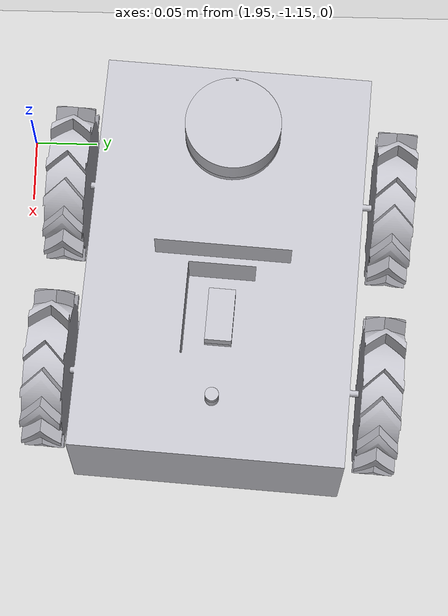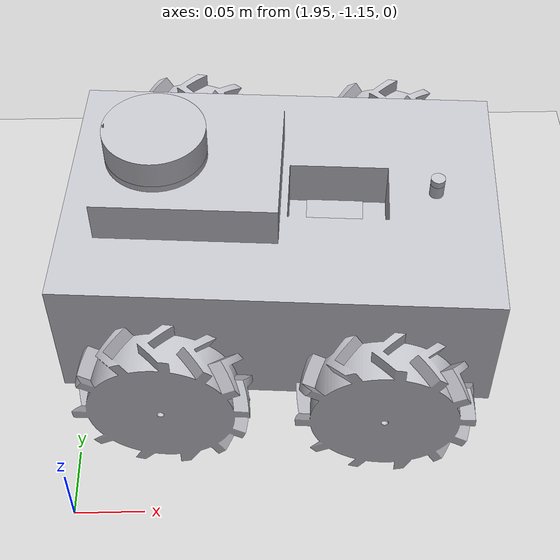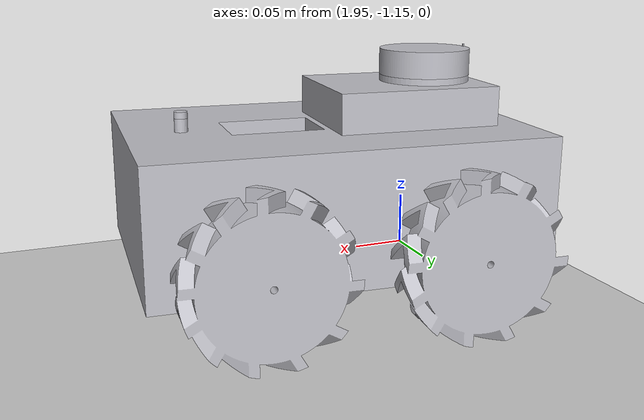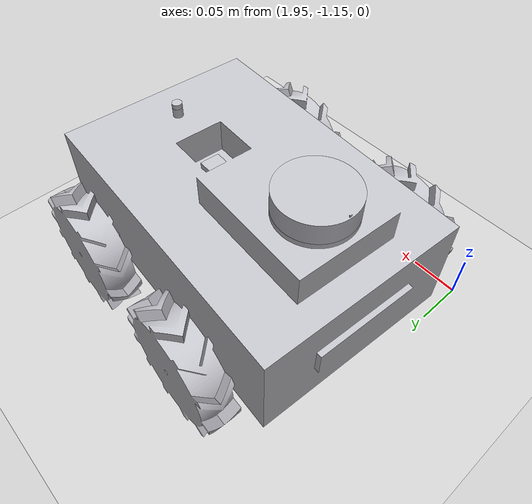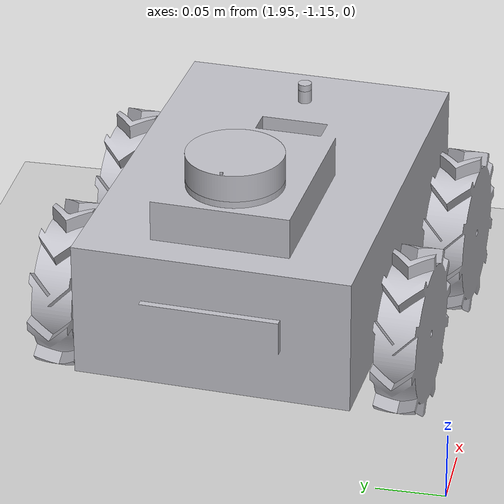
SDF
<sdf version="1.7">
 <world name="default">
  <light name="sun" type="directional">
   <pose>0 0 10 0 -0 0</pose>
   <diffuse>0.8 0.8 0.8 1</diffuse>
   <specular>0.2 0.2 0.2 1</specular>
   <attenuation>
    <range>1000</range>
    <constant>0.9</constant>
    <linear>0.01</linear>
    <quadratic>0.001</quadratic>
   </attenuation>
   <direction>-0.5 0.1 -0.9</direction>
   <spot><inner_angle>0</inner_angle><outer_angle>0</outer_angle><falloff>0</falloff></spot>
  </light>
  <model name="ground_plane">
   <static>1</static>
   <link name="link">
    <collision name="collision">
     <geometry><plane><normal>0 0 1</normal><size>100 100</size></plane></geometry>
     <surface><friction><ode><mu>100</mu><mu2>50</mu2></ode></friction></surface>
    </collision>
    <visual name="visual">
     <cast_shadows>0</cast_shadows>
     <geometry><plane><normal>0 0 1</normal><size>100 100</size></plane></geometry>
     <material>
      <script><uri>file://media/materials/scripts/gazebo.material</uri><name>Gazebo/Grey</name></script>
     </material>
    </visual>
   </link>
  </model>
  <gravity>0 0 -9.8</gravity>
  <magnetic_field>6e-06 2.3e-05 -4.2e-05</magnetic_field>
  <atmosphere type="adiabatic"/>
  <physics type="ode">
   <max_step_size>0.001</max_step_size>
   <real_time_factor>1</real_time_factor>
   <real_time_update_rate>1000</real_time_update_rate>
  </physics>
  <scene><ambient>0.4 0.4 0.4 1</ambient><background>0.7 0.7 0.7 1</background><shadows>1</shadows></scene>
  <audio><device>default</device></audio>
  <spherical_coordinates>
   <surface_model>EARTH_WGS84</surface_model>
   <latitude_deg>0</latitude_deg>
   <longitude_deg>0</longitude_deg>
   <elevation>0</elevation>
   <heading_deg>0</heading_deg>
  </spherical_coordinates>
  <model name="bal_robot_urdf">
   <link name="base_link">
    <inertial>
     <pose>0.045593 0.001215 0.090924 0 -0 0</pose>
     <mass>7.41975</mass>
     <inertia>
      <ixx>0.0333575</ixx>
      <ixy>-4.40071e-06</ixy>
      <ixz>-0.00569166</ixz>
      <iyy>0.0671669</iyy>
      <iyz>1.21234e-06</iyz>
      <izz>0.0773116</izz>
     </inertia>
    </inertial>
    <collision name="base_link_collision">
     <geometry>
      <mesh>
       <scale>0.001 0.001 0.001</scale>
       <uri>file:///home/abcom/Documents/GitHub/assignment_ws/install/bal_robot_urdf_description/share/bal_robot_urdf_description/meshes/base_link.stl</uri>
      </mesh>
     </geometry>
     <surface><friction><ode><mu>0.2</mu><mu2>0.2</mu2></ode></friction></surface>
    </collision>
    <collision name="base_link_fixed_joint_lump__gps_1_collision_1">
     <geometry>
      <mesh>
       <scale>0.001 0.001 0.001</scale>
       <uri>file:///home/abcom/Documents/GitHub/assignment_ws/install/bal_robot_urdf_description/share/bal_robot_urdf_description/meshes/gps_1.stl</uri>
      </mesh>
     </geometry>
     <surface><friction><ode><mu>0.2</mu><mu2>0.2</mu2></ode></friction></surface>
    </collision>
    <collision name="base_link_fixed_joint_lump__lidar_1_collision_2">
     <geometry>
      <mesh>
       <scale>0.001 0.001 0.001</scale>
       <uri>file:///home/abcom/Documents/GitHub/assignment_ws/install/bal_robot_urdf_description/share/bal_robot_urdf_description/meshes/lidar_1.stl</uri>
      </mesh>
     </geometry>
     <surface><friction><ode><mu>0.2</mu><mu2>0.2</mu2></ode></friction></surface>
    </collision>
    <collision name="base_link_fixed_joint_lump__realsence_1_collision_3">
     <pose>-0.2 0 0 0 -0 0</pose>
     <geometry>
      <mesh>
       <scale>0.001 0.001 0.001</scale>
       <uri>file:///home/abcom/Documents/GitHub/assignment_ws/install/bal_robot_urdf_description/share/bal_robot_urdf_description/meshes/realsence_1.stl</uri>
      </mesh>
     </geometry>
     <surface><friction><ode><mu>0.2</mu><mu2>0.2</mu2></ode></friction></surface>
    </collision>
    <collision name="base_link_fixed_joint_lump__imu_1_collision_4">
     <geometry>
      <mesh>
       <scale>0.001 0.001 0.001</scale>
       <uri>file:///home/abcom/Documents/GitHub/assignment_ws/install/bal_robot_urdf_description/share/bal_robot_urdf_description/meshes/imu_1.stl</uri>
      </mesh>
     </geometry>
     <surface><friction><ode><mu>0.2</mu><mu2>0.2</mu2></ode></friction></surface>
    </collision>
    <visual name="base_link_visual">
     <geometry>
      <mesh>
       <scale>0.001 0.001 0.001</scale>
       <uri>file:///home/abcom/Documents/GitHub/assignment_ws/install/bal_robot_urdf_description/share/bal_robot_urdf_description/meshes/base_link.stl</uri>
      </mesh>
     </geometry>
     <material>
      <script><name>Gazebo/Silver</name><uri>file://media/materials/scripts/gazebo.material</uri></script>
     </material>
    </visual>
    <visual name="base_link_fixed_joint_lump__gps_1_visual_1">
     <geometry>
      <mesh>
       <scale>0.001 0.001 0.001</scale>
       <uri>file:///home/abcom/Documents/GitHub/assignment_ws/install/bal_robot_urdf_description/share/bal_robot_urdf_description/meshes/gps_1.stl</uri>
      </mesh>
     </geometry>
     <material>
      <script><name>Gazebo/Silver</name><uri>file://media/materials/scripts/gazebo.material</uri></script>
     </material>
    </visual>
    <visual name="base_link_fixed_joint_lump__lidar_1_visual_2">
     <geometry>
      <mesh>
       <scale>0.001 0.001 0.001</scale>
       <uri>file:///home/abcom/Documents/GitHub/assignment_ws/install/bal_robot_urdf_description/share/bal_robot_urdf_description/meshes/lidar_1.stl</uri>
      </mesh>
     </geometry>
     <material>
      <script><name>Gazebo/Silver</name><uri>file://media/materials/scripts/gazebo.material</uri></script>
     </material>
    </visual>
    <visual name="base_link_fixed_joint_lump__realsence_1_visual_3">
     <pose>-0.2 0 0 0 -0 0</pose>
     <geometry>
      <mesh>
       <scale>0.001 0.001 0.001</scale>
       <uri>file:///home/abcom/Documents/GitHub/assignment_ws/install/bal_robot_urdf_description/share/bal_robot_urdf_description/meshes/realsence_1.stl</uri>
      </mesh>
     </geometry>
     <material>
      <script><name>Gazebo/Silver</name><uri>file://media/materials/scripts/gazebo.material</uri></script>
     </material>
    </visual>
    <visual name="base_link_fixed_joint_lump__imu_1_visual_4">
     <geometry>
      <mesh>
       <scale>0.001 0.001 0.001</scale>
       <uri>file:///home/abcom/Documents/GitHub/assignment_ws/install/bal_robot_urdf_description/share/bal_robot_urdf_description/meshes/imu_1.stl</uri>
      </mesh>
     </geometry>
     <material>
      <script><name>Gazebo/Silver</name><uri>file://media/materials/scripts/gazebo.material</uri></script>
     </material>
    </visual>
    <self_collide>1</self_collide>
    <self_collide>1</self_collide>
    <self_collide>1</self_collide>
    <sensor name="lidar_sensor" type="ray">
     <visualize>1</visualize>
     <update_rate>10</update_rate>
     <ray>
      <scan>
       <horizontal>
        <samples>360</samples>
        <resolution>1</resolution>
        <min_angle>-3.14</min_angle>
        <max_angle>3.14</max_angle>
       </horizontal>
       <vertical><samples>1</samples><min_angle>0</min_angle><max_angle>0</max_angle></vertical>
      </scan>
      <range><min>0.3</min><max>10</max><resolution>0.01</resolution></range>
      <noise><type>gaussian</type><mean>0</mean><stddev>0.01</stddev></noise>
     </ray>
     <plugin name="laser_controller" filename="libgazebo_ros_ray_sensor.so">
      <ros><argument>~/out:=scan</argument></ros>
      <output_type>sensor_msgs/LaserScan</output_type>
      <frame_name>lidar_1</frame_name>
     </plugin>
     <pose>0.117737 0.001226 0.164764 0 -0 0</pose>
    </sensor>
    <self_collide>1</self_collide>
    <sensor name="camera" type="camera">
     <visualize>1</visualize>
     <update_rate>10</update_rate>
     <camera>
      <horizontal_fov>1.089</horizontal_fov>
      <image><format>R8G8B8</format><width>640</width><height>480</height></image>
      <clip><near>0.05</near><far>12</far></clip>
     </camera>
     <plugin name="camera_controller" filename="libgazebo_ros_camera.so">
      <frame_name>realsence_1_optical</frame_name>
     </plugin>
     <pose>0.187737 0.001226 0.082264 0 -0 0</pose>
    </sensor>
    <self_collide>1</self_collide>
    <sensor name="imu_sensor" type="imu">
     <always_on>1</always_on>
     <update_rate>100</update_rate>
     <visualize>1</visualize>
     <topic>__default_topic__</topic>
     <plugin name="imu_data" filename="libgazebo_ros_imu_sensor.so">
      <topicName>imu</topicName>
      <bodyName>imu_1</bodyName>
      <updateRateHZ>10.0</updateRateHZ>
      <gaussianNoise>0.0</gaussianNoise>
      <xyzOffset>0 0 0</xyzOffset>
      <rpyOffset>0 0 0</rpyOffset>
      <frameName>imu_1</frameName>
      <initialOrientationAsReference>0</initialOrientationAsReference>
     </plugin>
     <pose>-0.005 0 0.099764 0 -0 0</pose>
    </sensor>
   </link>
   <joint name="Revolute 4" type="revolute">
    <pose relative_to="base_link">0.107737 -0.108774 0.054764 0 -0 0</pose>
    <parent>base_link</parent>
    <child>rfwheel_1</child>
    <axis>
     <xyz>0 1 0</xyz>
     <limit><lower>-1e+16</lower><upper>1e+16</upper></limit>
     <dynamics><spring_reference>0</spring_reference><spring_stiffness>0</spring_stiffness></dynamics>
    </axis>
   </joint>
   <link name="rfwheel_1">
    <pose relative_to="Revolute 4">0 0 0 0 -0 0</pose>
    <inertial>
     <pose>-0.000489 -0.015 0.000114 0 -0 0</pose>
     <mass>2.04482</mass>
     <inertia>
      <ixx>0.001605</ixx>
      <ixy>0</ixy>
      <ixz>2e-06</ixz>
      <iyy>0.002914</iyy>
      <iyz>0</iyz>
      <izz>0.001615</izz>
     </inertia>
    </inertial>
    <collision name="rfwheel_1_collision">
     <pose>-0.107737 0.108774 -0.054764 0 -0 0</pose>
     <geometry>
      <mesh>
       <scale>0.001 0.001 0.001</scale>
       <uri>file:///home/abcom/Documents/GitHub/assignment_ws/install/bal_robot_urdf_description/share/bal_robot_urdf_description/meshes/rfwheel_1.stl</uri>
      </mesh>
     </geometry>
     <surface><friction><ode><mu>0.2</mu><mu2>0.2</mu2></ode></friction></surface>
    </collision>
    <visual name="rfwheel_1_visual">
     <pose>-0.107737 0.108774 -0.054764 0 -0 0</pose>
     <geometry>
      <mesh>
       <scale>0.001 0.001 0.001</scale>
       <uri>file:///home/abcom/Documents/GitHub/assignment_ws/install/bal_robot_urdf_description/share/bal_robot_urdf_description/meshes/rfwheel_1.stl</uri>
      </mesh>
     </geometry>
     <material>
      <script><name>Gazebo/Silver</name><uri>file://media/materials/scripts/gazebo.material</uri></script>
     </material>
    </visual>
    <self_collide>1</self_collide>
   </link>
   <joint name="Revolute 5" type="revolute">
    <pose relative_to="base_link">-0.042263 -0.108774 0.054764 0 -0 0</pose>
    <parent>base_link</parent>
    <child>rbwheel_1</child>
    <axis>
     <xyz>0 1 0</xyz>
     <limit><lower>-1e+16</lower><upper>1e+16</upper></limit>
     <dynamics><spring_reference>0</spring_reference><spring_stiffness>0</spring_stiffness></dynamics>
    </axis>
   </joint>
   <link name="rbwheel_1">
    <pose relative_to="Revolute 5">0 0 0 0 -0 0</pose>
    <inertial>
     <pose>-0.000489 -0.015 0.000114 0 -0 0</pose>
     <mass>2.04482</mass>
     <inertia>
      <ixx>0.001605</ixx>
      <ixy>0</ixy>
      <ixz>2e-06</ixz>
      <iyy>0.002914</iyy>
      <iyz>0</iyz>
      <izz>0.001615</izz>
     </inertia>
    </inertial>
    <collision name="rbwheel_1_collision">
     <pose>0.042263 0.108774 -0.054764 0 -0 0</pose>
     <geometry>
      <mesh>
       <scale>0.001 0.001 0.001</scale>
       <uri>file:///home/abcom/Documents/GitHub/assignment_ws/install/bal_robot_urdf_description/share/bal_robot_urdf_description/meshes/rbwheel_1.stl</uri>
      </mesh>
     </geometry>
     <surface><friction><ode><mu>0.2</mu><mu2>0.2</mu2></ode></friction></surface>
    </collision>
    <visual name="rbwheel_1_visual">
     <pose>0.042263 0.108774 -0.054764 0 -0 0</pose>
     <geometry>
      <mesh>
       <scale>0.001 0.001 0.001</scale>
       <uri>file:///home/abcom/Documents/GitHub/assignment_ws/install/bal_robot_urdf_description/share/bal_robot_urdf_description/meshes/rbwheel_1.stl</uri>
      </mesh>
     </geometry>
     <material>
      <script><name>Gazebo/Silver</name><uri>file://media/materials/scripts/gazebo.material</uri></script>
     </material>
    </visual>
    <self_collide>1</self_collide>
   </link>
   <joint name="Revolute 6" type="revolute">
    <pose relative_to="base_link">0.107737 0.111226 0.054764 0 -0 0</pose>
    <parent>base_link</parent>
    <child>lfwheel_1</child>
    <axis>
     <xyz>0 1 0</xyz>
     <limit><lower>-1e+16</lower><upper>1e+16</upper></limit>
     <dynamics><spring_reference>0</spring_reference><spring_stiffness>0</spring_stiffness></dynamics>
    </axis>
   </joint>
   <link name="lfwheel_1">
    <pose relative_to="Revolute 6">0 0 0 0 -0 0</pose>
    <inertial>
     <pose>-0.000489 0.015 0.000114 0 -0 0</pose>
     <mass>2.04482</mass>
     <inertia>
      <ixx>0.001605</ixx>
      <ixy>0</ixy>
      <ixz>2e-06</ixz>
      <iyy>0.002914</iyy>
      <iyz>0</iyz>
      <izz>0.001615</izz>
     </inertia>
    </inertial>
    <collision name="lfwheel_1_collision">
     <pose>-0.107737 -0.111226 -0.054764 0 -0 0</pose>
     <geometry>
      <mesh>
       <scale>0.001 0.001 0.001</scale>
       <uri>file:///home/abcom/Documents/GitHub/assignment_ws/install/bal_robot_urdf_description/share/bal_robot_urdf_description/meshes/lfwheel_1.stl</uri>
      </mesh>
     </geometry>
     <surface><friction><ode><mu>0.2</mu><mu2>0.2</mu2></ode></friction></surface>
    </collision>
    <visual name="lfwheel_1_visual">
     <pose>-0.107737 -0.111226 -0.054764 0 -0 0</pose>
     <geometry>
      <mesh>
       <scale>0.001 0.001 0.001</scale>
       <uri>file:///home/abcom/Documents/GitHub/assignment_ws/install/bal_robot_urdf_description/share/bal_robot_urdf_description/meshes/lfwheel_1.stl</uri>
      </mesh>
     </geometry>
     <material>
      <script><name>Gazebo/Silver</name><uri>file://media/materials/scripts/gazebo.material</uri></script>
     </material>
    </visual>
    <self_collide>1</self_collide>
   </link>
   <joint name="Revolute 7" type="revolute">
    <pose relative_to="base_link">-0.042263 0.111226 0.054764 0 -0 0</pose>
    <parent>base_link</parent>
    <child>lbwheel_1</child>
    <axis>
     <xyz>0 1 0</xyz>
     <limit><lower>-1e+16</lower><upper>1e+16</upper></limit>
     <dynamics><spring_reference>0</spring_reference><spring_stiffness>0</spring_stiffness></dynamics>
    </axis>
   </joint>
   <link name="lbwheel_1">
    <pose relative_to="Revolute 7">0 0 0 0 -0 0</pose>
    <inertial>
     <pose>-0.000489 0.015 0.000114 0 -0 0</pose>
     <mass>2.04482</mass>
     <inertia>
      <ixx>0.001605</ixx>
      <ixy>0</ixy>
      <ixz>2e-06</ixz>
      <iyy>0.002914</iyy>
      <iyz>0</iyz>
      <izz>0.001615</izz>
     </inertia>
    </inertial>
    <collision name="lbwheel_1_collision">
     <pose>0.042263 -0.111226 -0.054764 0 -0 0</pose>
     <geometry>
      <mesh>
       <scale>0.001 0.001 0.001</scale>
       <uri>file:///home/abcom/Documents/GitHub/assignment_ws/install/bal_robot_urdf_description/share/bal_robot_urdf_description/meshes/lbwheel_1.stl</uri>
      </mesh>
     </geometry>
     <surface><friction><ode><mu>0.2</mu><mu2>0.2</mu2></ode></friction></surface>
    </collision>
    <visual name="lbwheel_1_visual">
     <pose>0.042263 -0.111226 -0.054764 0 -0 0</pose>
     <geometry>
      <mesh>
       <scale>0.001 0.001 0.001</scale>
       <uri>file:///home/abcom/Documents/GitHub/assignment_ws/install/bal_robot_urdf_description/share/bal_robot_urdf_description/meshes/lbwheel_1.stl</uri>
      </mesh>
     </geometry>
     <material>
      <script><name>Gazebo/Silver</name><uri>file://media/materials/scripts/gazebo.material</uri></script>
     </material>
    </visual>
    <self_collide>1</self_collide>
   </link>
   <plugin name="control" filename="libgazebo_ros_control.so"/>
   <plugin name="front_diff_drive" filename="libgazebo_ros_diff_drive.so">
    <update_rate>30</update_rate>
    <left_joint>Revolute 6</left_joint>
    <right_joint>Revolute 4</right_joint>
    <wheel_separation>0.22</wheel_separation>
    <wheel_diameter>0.05</wheel_diameter>
    <robot_base_frame>base_link</robot_base_frame>
    <max_wheel_torque>0.5</max_wheel_torque>
    <max_wheel_acceleration>0.5</max_wheel_acceleration>
    <command_topic>cmd_vel</command_topic>
    <odometry_topic>odom</odometry_topic>
    <odometry_frame>odom</odometry_frame>
    <robot_base_frame>base_link</robot_base_frame>
    <publish_odom>1</publish_odom>
    <publish_odom_tf>1</publish_odom_tf>
    <publish_wheel_tf>1</publish_wheel_tf>
   </plugin>
   <static>0</static>
   <plugin name="rear_diff_drive" filename="libgazebo_ros_diff_drive.so">
    <update_rate>30</update_rate>
    <left_joint>Revolute 7</left_joint>
    <right_joint>Revolute 5</right_joint>
    <wheel_separation>0.22</wheel_separation>
    <wheel_diameter>0.05</wheel_diameter>
    <robot_base_frame>base_link</robot_base_frame>
    <max_wheel_torque>0.5</max_wheel_torque>
    <max_wheel_acceleration>0.5</max_wheel_acceleration>
    <command_topic>cmd_vel</command_topic>
    <odometry_topic>odom</odometry_topic>
    <odometry_frame>odom</odometry_frame>
    <robot_base_frame>base_link</robot_base_frame>
    <publish_odom>1</publish_odom>
    <publish_odom_tf>1</publish_odom_tf>
    <publish_wheel_tf>1</publish_wheel_tf>
   </plugin>
   <pose>2.13437 -0.992813 0.034974 0.001237 0.001827 3.07594</pose>
  </model>
 </world>
</sdf>
